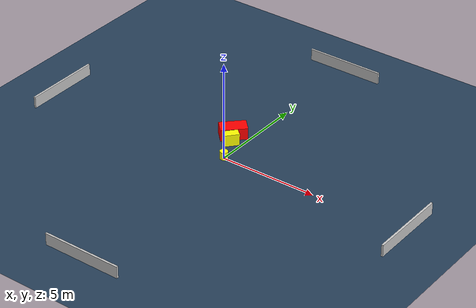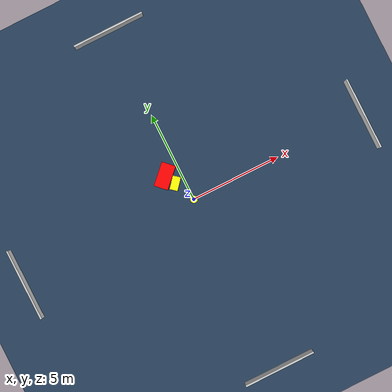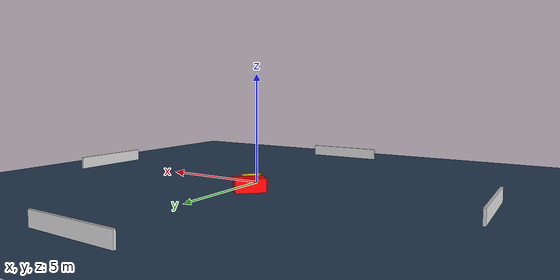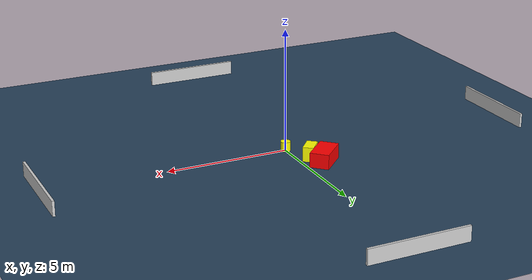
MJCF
<?xml version="1.0" ?>
<mujoco model="generated_environment">
  <option timestep="0.01" integrator="RK4" cone="elliptic"/>
  <default>
    <geom density="1"/>
  </default>
  <asset>
    <texture builtin="gradient" height="3072" name="skybox" rgb1="0.3 0.5 0.7" rgb2="0 0 0" type="skybox" width="512"/>
    <texture builtin="checker" height="300" name="groundplane" rgb1="0.2 0.3 0.4" rgb2="0.1 0.2 0.3" type="2d" width="300"/>
    <material name="groundplane" reflectance="0.2" texrepeat="5 5" texture="groundplane"/>
  </asset>
  <worldbody>
    <light dir="0 0 -1" directional="true" pos="0 0 1.5"/>
    <geom condim="3" friction="0.5 0.005 0.001" material="groundplane" name="floor" pos="0 0 0" size="0 0 0.05" type="plane"/>
    <body name="walls">
      <geom name="wall_1" condim="4" pos="-10.0 0.0 0.3" rgba="0.800000011920929 0.800000011920929 0.800000011920929 1.0" size="0.05 2.0 0.3" type="box"/>
      <geom name="wall_2" condim="4" pos="10.0 0.0 0.3" rgba="0.800000011920929 0.800000011920929 0.800000011920929 1.0" size="0.05 2.0 0.3" type="box"/>
      <geom name="wall_3" condim="4" pos="0.0 -10.0 0.3" rgba="0.800000011920929 0.800000011920929 0.800000011920929 1.0" size="2.0 0.05 0.3" type="box"/>
      <geom name="wall_4" condim="4" pos="0.0 10.0 0.3" rgba="0.800000011920929 0.800000011920929 0.800000011920929 1.0" size="2.0 0.05 0.3" type="box"/>
    </body>
    <body name="robot">
      <joint name="joint_x" type="slide" pos="0 0 0" axis="1 0 0"/>
      <joint name="joint_y" type="slide" pos="0 0 0" axis="0 1 0"/>
      <geom name="robot" type="cylinder" pos="0.0 0.0 0.2" size="0.2 0.2 0.0" mass="5.0" friction="1.0 0.005 0.0001" condim="4" rgba="1.0 1.0 0.0 1.0"/>
    </body>
    <body name="obstacle_1_movable">
      <geom name="obstacle_1_movable" condim="4" pos="-0.49689826050000163 1.198042040125338 0.3" euler="0 0 139.73052025700005" friction="0.0 0.005 0.001" rgba="1.0 1.0 0.0 1.0" size="0.21750956298278992 0.3755281842557258 0.3" type="box" mass="0.1"/>
      <joint type="free"/>
    </body>
    <body name="obstacle_2_static">
      <geom name="obstacle_2_static" condim="4" pos="-0.8112728809477333 1.7868121074651386 0.3" euler="0 0 134.92964024383244" friction="0.0 0.005 0.001" rgba="1.0 0.0 0.0 1.0" size="0.38259303089401164 0.6646911769582012 0.3" type="box"/>
    </body>
  </worldbody>
  <actuator>
    <motor name="actuator_x" joint="joint_x" gear="1" ctrlrange="-1 1"/>
    <motor name="actuator_y" joint="joint_y" gear="1" ctrlrange="-1 1"/>
  </actuator>
</mujoco>
